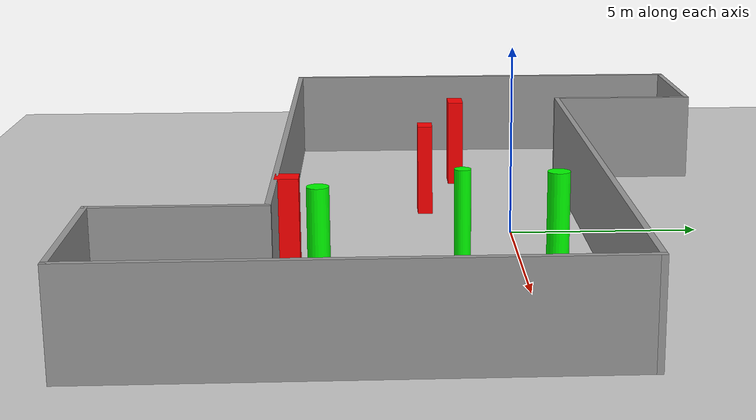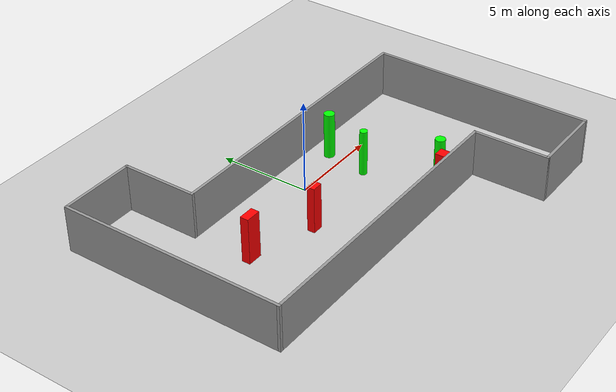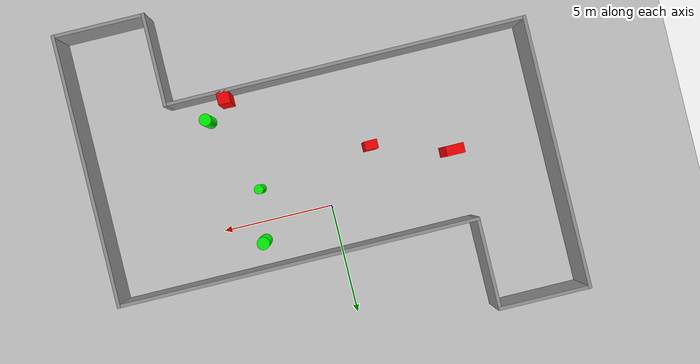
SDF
<sdf version="1.7">
 <world name="default">
  <light name="sun" type="directional">
   <pose>0 0 10 0 -0 0</pose>
   <diffuse>0.8 0.8 0.8 1</diffuse>
   <specular>0.2 0.2 0.2 1</specular>
   <attenuation>
    <range>1000</range>
    <constant>0.9</constant>
    <linear>0.01</linear>
    <quadratic>0.001</quadratic>
   </attenuation>
   <direction>-0.5 0.1 -0.9</direction>
   <spot><inner_angle>0</inner_angle><outer_angle>0</outer_angle><falloff>0</falloff></spot>
  </light>
  <model name="ground_plane">
   <static>1</static>
   <link name="link">
    <collision name="collision">
     <geometry><plane><normal>0 0 1</normal><size>100 100</size></plane></geometry>
     <surface>
      <contact><collide_bitmask>65535</collide_bitmask></contact>
      <friction><ode><mu>100</mu><mu2>50</mu2></ode></friction>
     </surface>
    </collision>
    <visual name="visual">
     <cast_shadows>0</cast_shadows>
     <geometry><plane><normal>0 0 1</normal><size>100 100</size></plane></geometry>
     <material>
      <script><uri>file://media/materials/scripts/gazebo.material</uri><name>Gazebo/Grey</name></script>
     </material>
    </visual>
   </link>
  </model>
  <gravity>0 0 -9.8</gravity>
  <magnetic_field>6e-06 2.3e-05 -4.2e-05</magnetic_field>
  <atmosphere type="adiabatic"/>
  <physics type="ode">
   <max_step_size>0.001</max_step_size>
   <real_time_factor>1</real_time_factor>
   <real_time_update_rate>1000</real_time_update_rate>
  </physics>
  <scene><ambient>0.4 0.4 0.4 1</ambient><background>0.7 0.7 0.7 1</background><shadows>1</shadows></scene>
  <spherical_coordinates>
   <surface_model>EARTH_WGS84</surface_model>
   <latitude_deg>0</latitude_deg>
   <longitude_deg>0</longitude_deg>
   <elevation>0</elevation>
   <heading_deg>0</heading_deg>
  </spherical_coordinates>
  <model name="my_base_walls">
   <link name="Wall_13">
    <collision name="Wall_13_Collision">
     <geometry><box><size>12.15 0.15 2.5</size></box></geometry>
     <pose>0 0 1.25 0 -0 0</pose>
    </collision>
    <visual name="Wall_13_Visual">
     <pose>0 0 1.25 0 -0 0</pose>
     <geometry><box><size>12.15 0.15 2.5</size></box></geometry>
     <material>
      <script><uri>file://media/materials/scripts/gazebo.material</uri><name>Gazebo/Grey</name></script>
      <ambient>1 1 1 1</ambient>
     </material>
     <meta><layer>0</layer></meta>
    </visual>
    <pose>10 -2 0 0 -0 1.5708</pose>
   </link>
   <link name="Wall_15">
    <collision name="Wall_15_Collision">
     <geometry><box><size>16.15 0.15 2.5</size></box></geometry>
     <pose>0 0 1.25 0 -0 0</pose>
    </collision>
    <visual name="Wall_15_Visual">
     <pose>0 0 1.25 0 -0 0</pose>
     <geometry><box><size>16.15 0.15 2.5</size></box></geometry>
     <material>
      <script><uri>file://media/materials/scripts/gazebo.material</uri><name>Gazebo/Grey</name></script>
      <ambient>1 1 1 1</ambient>
     </material>
     <meta><layer>0</layer></meta>
    </visual>
    <pose>2 4 0 0 -0 3.14159</pose>
   </link>
   <link name="Wall_17">
    <collision name="Wall_17_Collision">
     <geometry><box><size>4.15 0.15 2.5</size></box></geometry>
     <pose>0 0 1.25 0 -0 0</pose>
    </collision>
    <visual name="Wall_17_Visual">
     <pose>0 0 1.25 0 -0 0</pose>
     <geometry><box><size>4.15 0.15 2.5</size></box></geometry>
     <material>
      <script><uri>file://media/materials/scripts/gazebo.material</uri><name>Gazebo/Grey</name></script>
      <ambient>1 1 1 1</ambient>
     </material>
     <meta><layer>0</layer></meta>
    </visual>
    <pose>6 -6 0 0 -0 -1.5708</pose>
   </link>
   <link name="Wall_19">
    <collision name="Wall_19_Collision">
     <geometry><box><size>12.15 0.15 2.5</size></box></geometry>
     <pose>0 0 1.25 0 -0 0</pose>
    </collision>
    <visual name="Wall_19_Visual">
     <pose>0 0 1.25 0 -0 0</pose>
     <geometry><box><size>12.15 0.15 2.5</size></box></geometry>
     <material>
      <script><uri>file://media/materials/scripts/gazebo.material</uri><name>Gazebo/Grey</name></script>
      <ambient>1 1 1 1</ambient>
     </material>
     <meta><layer>0</layer></meta>
    </visual>
    <pose>-10 2 0 0 -0 1.5708</pose>
   </link>
   <link name="Wall_21">
    <collision name="Wall_21_Collision">
     <geometry><box><size>4.15 0.15 2.5</size></box></geometry>
     <pose>0 0 1.25 0 -0 0</pose>
    </collision>
    <visual name="Wall_21_Visual">
     <pose>0 0 1.25 0 -0 0</pose>
     <geometry><box><size>4.15 0.15 2.5</size></box></geometry>
     <material>
      <script><uri>file://media/materials/scripts/gazebo.material</uri><name>Gazebo/Grey</name></script>
      <ambient>1 1 1 1</ambient>
     </material>
     <meta><layer>0</layer></meta>
    </visual>
    <pose>-8 8 0 0 -0 0</pose>
   </link>
   <link name="Wall_23">
    <collision name="Wall_23_Collision">
     <geometry><box><size>4.15 0.15 2.5</size></box></geometry>
     <pose>0 0 1.25 0 -0 0</pose>
    </collision>
    <visual name="Wall_23_Visual">
     <pose>0 0 1.25 0 -0 0</pose>
     <geometry><box><size>4.15 0.15 2.5</size></box></geometry>
     <material>
      <script><uri>file://media/materials/scripts/gazebo.material</uri><name>Gazebo/Grey</name></script>
      <ambient>1 1 1 1</ambient>
     </material>
     <meta><layer>0</layer></meta>
    </visual>
    <pose>-6 6 0 0 -0 -1.5708</pose>
   </link>
   <link name="Wall_25">
    <collision name="Wall_25_Collision">
     <geometry><box><size>4.15 0.15 2.5</size></box></geometry>
     <pose>0 0 1.25 0 -0 0</pose>
    </collision>
    <visual name="Wall_25_Visual">
     <pose>0 0 1.25 0 -0 0</pose>
     <geometry><box><size>4.15 0.15 2.5</size></box></geometry>
     <material>
      <script><uri>file://media/materials/scripts/gazebo.material</uri><name>Gazebo/Grey</name></script>
      <ambient>1 1 1 1</ambient>
     </material>
     <meta><layer>0</layer></meta>
    </visual>
    <pose>8 -8 0 0 -0 0</pose>
   </link>
   <link name="Wall_9">
    <collision name="Wall_9_Collision">
     <geometry><box><size>16.15 0.15 2.5</size></box></geometry>
     <pose>0 0 1.25 0 -0 0</pose>
    </collision>
    <visual name="Wall_9_Visual">
     <pose>0 0 1.25 0 -0 0</pose>
     <geometry><box><size>16.15 0.15 2.5</size></box></geometry>
     <material>
      <script><uri>file://media/materials/scripts/gazebo.material</uri><name>Gazebo/Grey</name></script>
      <ambient>1 1 1 1</ambient>
     </material>
     <meta><layer>0</layer></meta>
    </visual>
    <pose>-2 -4 0 0 -0 3.14159</pose>
   </link>
   <static>1</static>
   <pose>-0 -2 0 0 -0 0</pose>
  </model>
  <model name="cylinder1">
   <static>1</static>
   <link name="link">
    <inertial>
     <mass>1</mass>
     <inertia><ixx>0.5</ixx><ixy>0</ixy><ixz>0</ixz><iyy>0.5</iyy><iyz>0</iyz><izz>1</izz></inertia>
    </inertial>
    <collision name="collision">
     <geometry><cylinder><radius>0.2691743254016751</radius><length>2.5</length></cylinder></geometry>
    </collision>
    <visual name="visual">
     <geometry><cylinder><radius>0.2691743254016751</radius><length>2.5</length></cylinder></geometry>
     <material>
      <ambient>0 1 0 1</ambient>
      <diffuse>0 1 0 1</diffuse>
      <specular>0.1 0.1 0.1 1</specular>
      <emissive>0 0 0 0</emissive>
     </material>
    </visual>
   </link>
   <pose>4.454365582038454 -4.952964286880404 1.25 0 0 0</pose>
  </model>
  <model name="cylinder2">
   <static>1</static>
   <link name="link">
    <inertial>
     <mass>1</mass>
     <inertia><ixx>0.5</ixx><ixy>0</ixy><ixz>0</ixz><iyy>0.5</iyy><iyz>0</iyz><izz>1</izz></inertia>
    </inertial>
    <collision name="collision">
     <geometry><cylinder><radius>0.28049135636608785</radius><length>2.5</length></cylinder></geometry>
    </collision>
    <visual name="visual">
     <geometry><cylinder><radius>0.28049135636608785</radius><length>2.5</length></cylinder></geometry>
     <material>
      <ambient>0 1 0 1</ambient>
      <diffuse>0 1 0 1</diffuse>
      <specular>0.1 0.1 0.1 1</specular>
      <emissive>0 0 0 0</emissive>
     </material>
    </visual>
   </link>
   <pose>3.2753261527173745 0.8346552839212134 1.25 0 0 0</pose>
  </model>
  <model name="cylinder3">
   <static>1</static>
   <link name="link">
    <inertial>
     <mass>1</mass>
     <inertia><ixx>0.5</ixx><ixy>0</ixy><ixz>0</ixz><iyy>0.5</iyy><iyz>0</iyz><izz>1</izz></inertia>
    </inertial>
    <collision name="collision">
     <geometry><cylinder><radius>0.20750630737381956</radius><length>2.5</length></cylinder></geometry>
    </collision>
    <visual name="visual">
     <geometry><cylinder><radius>0.20750630737381956</radius><length>2.5</length></cylinder></geometry>
     <material>
      <ambient>0 1 0 1</ambient>
      <diffuse>0 1 0 1</diffuse>
      <specular>0.1 0.1 0.1 1</specular>
      <emissive>0 0 0 0</emissive>
     </material>
    </visual>
   </link>
   <pose>2.9153730441694634 -1.4820453959436577 1.25 0 0 0</pose>
  </model>
  <model name="box1">
   <static>1</static>
   <link name="link">
    <inertial>
     <mass>1</mass>
     <inertia><ixx>0.083</ixx><ixy>0</ixy><ixz>0</ixz><iyy>0.083</iyy><iyz>0</iyz><izz>0.083</izz></inertia>
    </inertial>
    <collision name="collision">
     <geometry><box><size>0.5782530424936103 0.40362482930408533 2.5</size></box></geometry>
    </collision>
    <visual name="visual">
     <geometry><box><size>0.5782530424936103 0.40362482930408533 2.5</size></box></geometry>
     <material>
      <ambient>1 0 0 1</ambient>
      <diffuse>1 0 0 1</diffuse>
      <specular>0.1 0.1 0.1 1</specular>
      <emissive>0 0 0 0</emissive>
     </material>
    </visual>
    <sensor name="my_contact" type="contact">
     <contact><collision>box_collision</collision><topic>__default_topic__</topic></contact>
    </sensor>
   </link>
   <pose>-2.263542345857742 -2.2044360113052184 1.25 0 0 0</pose>
  </model>
  <model name="box2">
   <static>1</static>
   <link name="link">
    <inertial>
     <mass>1</mass>
     <inertia><ixx>0.083</ixx><ixy>0</ixy><ixz>0</ixz><iyy>0.083</iyy><iyz>0</iyz><izz>0.083</izz></inertia>
    </inertial>
    <collision name="collision">
     <geometry><box><size>0.5460070681118967 0.5784921169184686 2.5</size></box></geometry>
    </collision>
    <visual name="visual">
     <geometry><box><size>0.5460070681118967 0.5784921169184686 2.5</size></box></geometry>
     <material>
      <ambient>1 0 0 1</ambient>
      <diffuse>1 0 0 1</diffuse>
      <specular>0.1 0.1 0.1 1</specular>
      <emissive>0 0 0 0</emissive>
     </material>
    </visual>
    <sensor name="my_contact" type="contact">
     <contact><collision>box_collision</collision><topic>__default_topic__</topic></contact>
    </sensor>
   </link>
   <pose>3.465548343939078 -5.720219733867948 1.25 0 0 0</pose>
  </model>
  <model name="box3">
   <static>1</static>
   <link name="link">
    <inertial>
     <mass>1</mass>
     <inertia><ixx>0.083</ixx><ixy>0</ixy><ixz>0</ixz><iyy>0.083</iyy><iyz>0</iyz><izz>0.083</izz></inertia>
    </inertial>
    <collision name="collision">
     <geometry><box><size>0.8139606004892836 0.4430623110429161 2.5</size></box></geometry>
    </collision>
    <visual name="visual">
     <geometry><box><size>0.8139606004892836 0.4430623110429161 2.5</size></box></geometry>
     <material>
      <ambient>1 0 0 1</ambient>
      <diffuse>1 0 0 1</diffuse>
      <specular>0.1 0.1 0.1 1</specular>
      <emissive>0 0 0 0</emissive>
     </material>
    </visual>
    <sensor name="my_contact" type="contact">
     <contact><collision>box_collision</collision><topic>__default_topic__</topic></contact>
    </sensor>
   </link>
   <pose>-5.745185543709491 -1.1506640360265488 1.25 0 0 0</pose>
  </model>
 </world>
</sdf>
